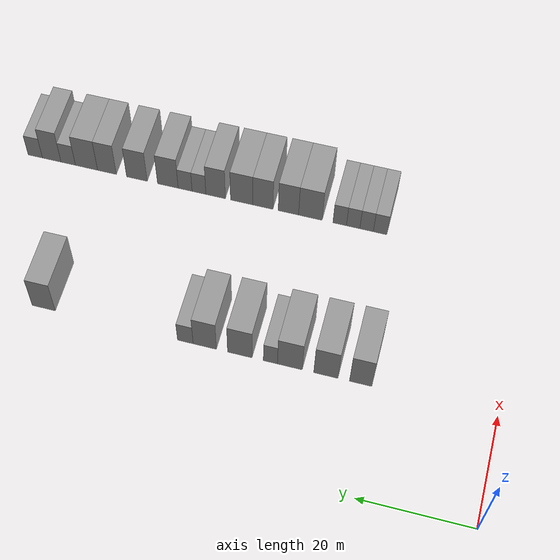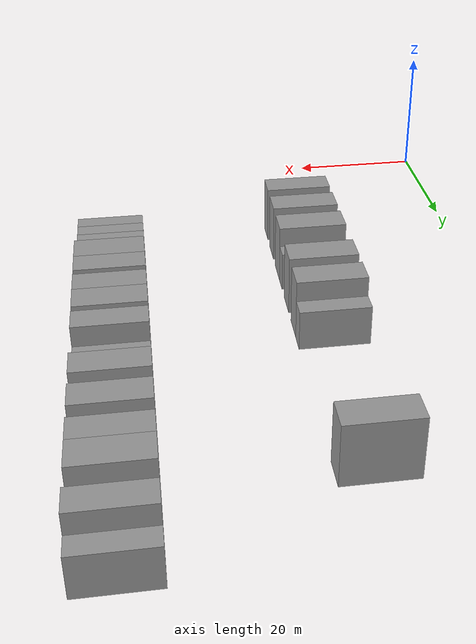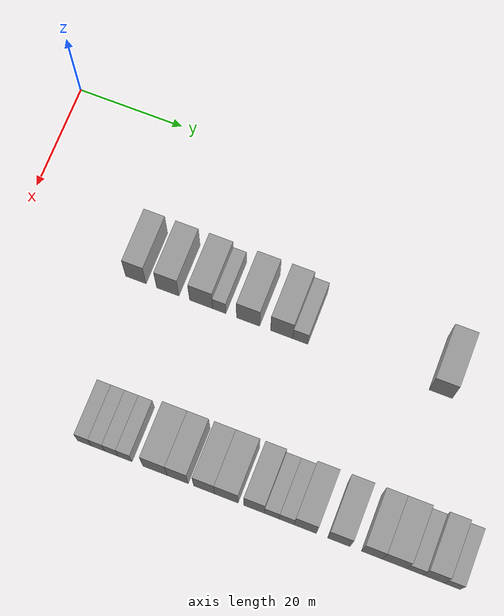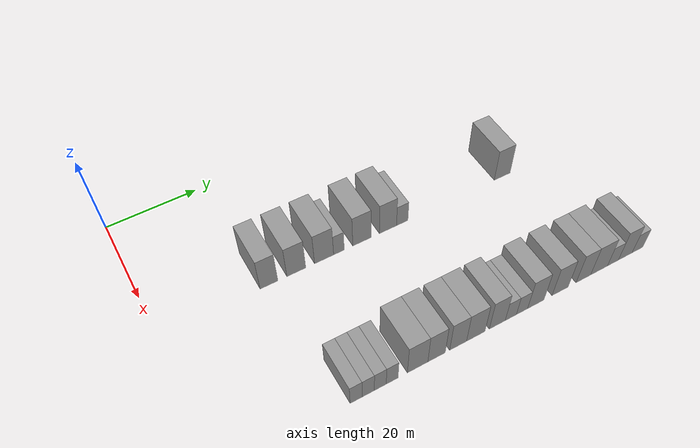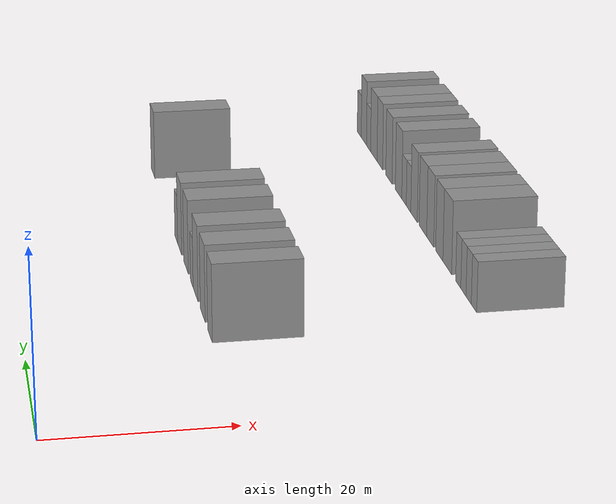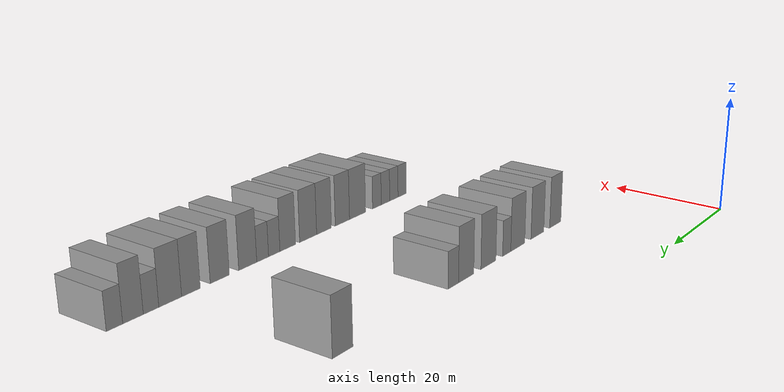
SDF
<sdf version="1.6">
 <world name="default">
  <model name="building_62">
   <static>1</static>
   <pose>25.0000 23.4004 0 0.000000 0.000000 0.000000</pose>
   <link name="link">
    <pose>0 0 4.50 0 0 0</pose>
    <collision name="collision"><geometry><box><size>10.0000 3.8824 9.0000</size></box></geometry></collision>
    <visual name="visual">
     <cast_shadows>0</cast_shadows>
     <geometry><box><size>10.0000 3.8824 9.0000</size></box></geometry>
     <material>
      <script>
       <uri>model://grey_wall/materials/scripts</uri>
       <uri>model://grey_wall/materials/textures</uri>
       <name>vrc/grey_wall</name>
      </script>
     </material>
    </visual>
   </link>
  </model>
  <model name="building_63">
   <static>1</static>
   <pose>25.0000 29.4496 0 0.000000 0.000000 0.000000</pose>
   <link name="link">
    <pose>0 0 4.50 0 0 0</pose>
    <collision name="collision"><geometry><box><size>10.0000 4.2161 9.0000</size></box></geometry></collision>
    <visual name="visual">
     <cast_shadows>0</cast_shadows>
     <geometry><box><size>10.0000 4.2161 9.0000</size></box></geometry>
     <material>
      <script>
       <uri>model://grey_wall/materials/scripts</uri>
       <uri>model://grey_wall/materials/textures</uri>
       <name>vrc/grey_wall</name>
      </script>
     </material>
    </visual>
   </link>
  </model>
  <model name="building_64">
   <static>1</static>
   <pose>25.0000 35.7394 0 0.000000 0.000000 0.000000</pose>
   <link name="link">
    <pose>0 0 4.50 0 0 0</pose>
    <collision name="collision"><geometry><box><size>10.0000 4.3635 9.0000</size></box></geometry></collision>
    <visual name="visual">
     <cast_shadows>0</cast_shadows>
     <geometry><box><size>10.0000 4.3635 9.0000</size></box></geometry>
     <material>
      <script>
       <uri>model://grey_wall/materials/scripts</uri>
       <uri>model://grey_wall/materials/textures</uri>
       <name>vrc/grey_wall</name>
      </script>
     </material>
    </visual>
   </link>
  </model>
  <model name="building_65">
   <static>1</static>
   <pose>25.0000 39.1544 0 0.000000 0.000000 0.000000</pose>
   <link name="link">
    <pose>0 0 3.00 0 0 0</pose>
    <collision name="collision"><geometry><box><size>10.0000 2.4665 6.0000</size></box></geometry></collision>
    <visual name="visual">
     <cast_shadows>0</cast_shadows>
     <geometry><box><size>10.0000 2.4665 6.0000</size></box></geometry>
     <material>
      <script>
       <uri>model://grey_wall/materials/scripts</uri>
       <uri>model://grey_wall/materials/textures</uri>
       <name>vrc/grey_wall</name>
      </script>
     </material>
    </visual>
   </link>
  </model>
  <model name="building_66">
   <static>1</static>
   <pose>25.0000 44.5543 0 0.000000 0.000000 0.000000</pose>
   <link name="link">
    <pose>0 0 4.50 0 0 0</pose>
    <collision name="collision"><geometry><box><size>10.0000 4.3334 9.0000</size></box></geometry></collision>
    <visual name="visual">
     <cast_shadows>0</cast_shadows>
     <geometry><box><size>10.0000 4.3334 9.0000</size></box></geometry>
     <material>
      <script>
       <uri>model://grey_wall/materials/scripts</uri>
       <uri>model://grey_wall/materials/textures</uri>
       <name>vrc/grey_wall</name>
      </script>
     </material>
    </visual>
   </link>
  </model>
  <model name="building_67">
   <static>1</static>
   <pose>25.0000 50.7945 0 0.000000 0.000000 0.000000</pose>
   <link name="link">
    <pose>0 0 4.50 0 0 0</pose>
    <collision name="collision"><geometry><box><size>10.0000 4.1470 9.0000</size></box></geometry></collision>
    <visual name="visual">
     <cast_shadows>0</cast_shadows>
     <geometry><box><size>10.0000 4.1470 9.0000</size></box></geometry>
     <material>
      <script>
       <uri>model://grey_wall/materials/scripts</uri>
       <uri>model://grey_wall/materials/textures</uri>
       <name>vrc/grey_wall</name>
      </script>
     </material>
    </visual>
   </link>
  </model>
  <model name="building_68">
   <static>1</static>
   <pose>25.0000 54.2632 0 0.000000 0.000000 0.000000</pose>
   <link name="link">
    <pose>0 0 3.00 0 0 0</pose>
    <collision name="collision"><geometry><box><size>10.0000 2.7905 6.0000</size></box></geometry></collision>
    <visual name="visual">
     <cast_shadows>0</cast_shadows>
     <geometry><box><size>10.0000 2.7905 6.0000</size></box></geometry>
     <material>
      <script>
       <uri>model://grey_wall/materials/scripts</uri>
       <uri>model://grey_wall/materials/textures</uri>
       <name>vrc/grey_wall</name>
      </script>
     </material>
    </visual>
   </link>
  </model>
  <model name="building_69">
   <static>1</static>
   <pose>25.0000 80.0277 0 0.000000 0.000000 0.000000</pose>
   <link name="link">
    <pose>0 0 4.50 0 0 0</pose>
    <collision name="collision"><geometry><box><size>10.0000 4.2462 9.0000</size></box></geometry></collision>
    <visual name="visual">
     <cast_shadows>0</cast_shadows>
     <geometry><box><size>10.0000 4.2462 9.0000</size></box></geometry>
     <material>
      <script>
       <uri>model://grey_wall/materials/scripts</uri>
       <uri>model://grey_wall/materials/textures</uri>
       <name>vrc/grey_wall</name>
      </script>
     </material>
    </visual>
   </link>
  </model>
  <model name="building_158">
   <static>1</static>
   <pose>55.0000 26.3717 0 0.000000 0.000000 0.000000</pose>
   <link name="link">
    <pose>0 0 3.00 0 0 0</pose>
    <collision name="collision"><geometry><box><size>10.0000 2.5093 6.0000</size></box></geometry></collision>
    <visual name="visual">
     <cast_shadows>0</cast_shadows>
     <geometry><box><size>10.0000 2.5093 6.0000</size></box></geometry>
     <material>
      <script>
       <uri>model://grey_wall/materials/scripts</uri>
       <uri>model://grey_wall/materials/textures</uri>
       <name>vrc/grey_wall</name>
      </script>
     </material>
    </visual>
   </link>
  </model>
  <model name="building_159">
   <static>1</static>
   <pose>55.0000 28.8742 0 0.000000 0.000000 0.000000</pose>
   <link name="link">
    <pose>0 0 3.00 0 0 0</pose>
    <collision name="collision"><geometry><box><size>10.0000 2.4955 6.0000</size></box></geometry></collision>
    <visual name="visual">
     <cast_shadows>0</cast_shadows>
     <geometry><box><size>10.0000 2.4955 6.0000</size></box></geometry>
     <material>
      <script>
       <uri>model://grey_wall/materials/scripts</uri>
       <uri>model://grey_wall/materials/textures</uri>
       <name>vrc/grey_wall</name>
      </script>
     </material>
    </visual>
   </link>
  </model>
  <model name="building_160">
   <static>1</static>
   <pose>55.0000 31.3643 0 0.000000 0.000000 0.000000</pose>
   <link name="link">
    <pose>0 0 3.00 0 0 0</pose>
    <collision name="collision"><geometry><box><size>10.0000 2.4848 6.0000</size></box></geometry></collision>
    <visual name="visual">
     <cast_shadows>0</cast_shadows>
     <geometry><box><size>10.0000 2.4848 6.0000</size></box></geometry>
     <material>
      <script>
       <uri>model://grey_wall/materials/scripts</uri>
       <uri>model://grey_wall/materials/textures</uri>
       <name>vrc/grey_wall</name>
      </script>
     </material>
    </visual>
   </link>
  </model>
  <model name="building_161">
   <static>1</static>
   <pose>55.0000 33.8622 0 0.000000 0.000000 0.000000</pose>
   <link name="link">
    <pose>0 0 3.00 0 0 0</pose>
    <collision name="collision"><geometry><box><size>10.0000 2.5110 6.0000</size></box></geometry></collision>
    <visual name="visual">
     <cast_shadows>0</cast_shadows>
     <geometry><box><size>10.0000 2.5110 6.0000</size></box></geometry>
     <material>
      <script>
       <uri>model://grey_wall/materials/scripts</uri>
       <uri>model://grey_wall/materials/textures</uri>
       <name>vrc/grey_wall</name>
      </script>
     </material>
    </visual>
   </link>
  </model>
  <model name="building_162">
   <static>1</static>
   <pose>55.0000 39.3290 0 0.000000 0.000000 0.000000</pose>
   <link name="link">
    <pose>0 0 4.50 0 0 0</pose>
    <collision name="collision"><geometry><box><size>10.0000 4.4226 9.0000</size></box></geometry></collision>
    <visual name="visual">
     <cast_shadows>0</cast_shadows>
     <geometry><box><size>10.0000 4.4226 9.0000</size></box></geometry>
     <material>
      <script>
       <uri>model://grey_wall/materials/scripts</uri>
       <uri>model://grey_wall/materials/textures</uri>
       <name>vrc/grey_wall</name>
      </script>
     </material>
    </visual>
   </link>
  </model>
  <model name="building_163">
   <static>1</static>
   <pose>55.0000 43.4551 0 0.000000 0.000000 0.000000</pose>
   <link name="link">
    <pose>0 0 4.50 0 0 0</pose>
    <collision name="collision"><geometry><box><size>10.0000 3.8297 9.0000</size></box></geometry></collision>
    <visual name="visual">
     <cast_shadows>0</cast_shadows>
     <geometry><box><size>10.0000 3.8297 9.0000</size></box></geometry>
     <material>
      <script>
       <uri>model://grey_wall/materials/scripts</uri>
       <uri>model://grey_wall/materials/textures</uri>
       <name>vrc/grey_wall</name>
      </script>
     </material>
    </visual>
   </link>
  </model>
  <model name="building_164">
   <static>1</static>
   <pose>55.0000 48.2676 0 0.000000 0.000000 0.000000</pose>
   <link name="link">
    <pose>0 0 4.50 0 0 0</pose>
    <collision name="collision"><geometry><box><size>10.0000 3.7953 9.0000</size></box></geometry></collision>
    <visual name="visual">
     <cast_shadows>0</cast_shadows>
     <geometry><box><size>10.0000 3.7953 9.0000</size></box></geometry>
     <material>
      <script>
       <uri>model://grey_wall/materials/scripts</uri>
       <uri>model://grey_wall/materials/textures</uri>
       <name>vrc/grey_wall</name>
      </script>
     </material>
    </visual>
   </link>
  </model>
  <model name="building_165">
   <static>1</static>
   <pose>55.0000 52.2779 0 0.000000 0.000000 0.000000</pose>
   <link name="link">
    <pose>0 0 4.50 0 0 0</pose>
    <collision name="collision"><geometry><box><size>10.0000 4.2254 9.0000</size></box></geometry></collision>
    <visual name="visual">
     <cast_shadows>0</cast_shadows>
     <geometry><box><size>10.0000 4.2254 9.0000</size></box></geometry>
     <material>
      <script>
       <uri>model://grey_wall/materials/scripts</uri>
       <uri>model://grey_wall/materials/textures</uri>
       <name>vrc/grey_wall</name>
      </script>
     </material>
    </visual>
   </link>
  </model>
  <model name="building_166">
   <static>1</static>
   <pose>55.0000 57.2483 0 0.000000 0.000000 0.000000</pose>
   <link name="link">
    <pose>0 0 4.50 0 0 0</pose>
    <collision name="collision"><geometry><box><size>10.0000 3.7154 9.0000</size></box></geometry></collision>
    <visual name="visual">
     <cast_shadows>0</cast_shadows>
     <geometry><box><size>10.0000 3.7154 9.0000</size></box></geometry>
     <material>
      <script>
       <uri>model://grey_wall/materials/scripts</uri>
       <uri>model://grey_wall/materials/textures</uri>
       <name>vrc/grey_wall</name>
      </script>
     </material>
    </visual>
   </link>
  </model>
  <model name="building_167">
   <static>1</static>
   <pose>55.0000 60.4273 0 0.000000 0.000000 0.000000</pose>
   <link name="link">
    <pose>0 0 3.00 0 0 0</pose>
    <collision name="collision"><geometry><box><size>10.0000 2.6425 6.0000</size></box></geometry></collision>
    <visual name="visual">
     <cast_shadows>0</cast_shadows>
     <geometry><box><size>10.0000 2.6425 6.0000</size></box></geometry>
     <material>
      <script>
       <uri>model://grey_wall/materials/scripts</uri>
       <uri>model://grey_wall/materials/textures</uri>
       <name>vrc/grey_wall</name>
      </script>
     </material>
    </visual>
   </link>
  </model>
  <model name="building_168">
   <static>1</static>
   <pose>55.0000 63.0873 0 0.000000 0.000000 0.000000</pose>
   <link name="link">
    <pose>0 0 3.00 0 0 0</pose>
    <collision name="collision"><geometry><box><size>10.0000 2.6775 6.0000</size></box></geometry></collision>
    <visual name="visual">
     <cast_shadows>0</cast_shadows>
     <geometry><box><size>10.0000 2.6775 6.0000</size></box></geometry>
     <material>
      <script>
       <uri>model://grey_wall/materials/scripts</uri>
       <uri>model://grey_wall/materials/textures</uri>
       <name>vrc/grey_wall</name>
      </script>
     </material>
    </visual>
   </link>
  </model>
  <model name="building_169">
   <static>1</static>
   <pose>55.0000 66.4097 0 0.000000 0.000000 0.000000</pose>
   <link name="link">
    <pose>0 0 4.50 0 0 0</pose>
    <collision name="collision"><geometry><box><size>10.0000 3.9674 9.0000</size></box></geometry></collision>
    <visual name="visual">
     <cast_shadows>0</cast_shadows>
     <geometry><box><size>10.0000 3.9674 9.0000</size></box></geometry>
     <material>
      <script>
       <uri>model://grey_wall/materials/scripts</uri>
       <uri>model://grey_wall/materials/textures</uri>
       <name>vrc/grey_wall</name>
      </script>
     </material>
    </visual>
   </link>
  </model>
  <model name="building_170">
   <static>1</static>
   <pose>55.0000 72.3916 0 0.000000 0.000000 0.000000</pose>
   <link name="link">
    <pose>0 0 4.50 0 0 0</pose>
    <collision name="collision"><geometry><box><size>10.0000 3.9963 9.0000</size></box></geometry></collision>
    <visual name="visual">
     <cast_shadows>0</cast_shadows>
     <geometry><box><size>10.0000 3.9963 9.0000</size></box></geometry>
     <material>
      <script>
       <uri>model://grey_wall/materials/scripts</uri>
       <uri>model://grey_wall/materials/textures</uri>
       <name>vrc/grey_wall</name>
      </script>
     </material>
    </visual>
   </link>
  </model>
  <model name="building_171">
   <static>1</static>
   <pose>55.0000 78.2296 0 0.000000 0.000000 0.000000</pose>
   <link name="link">
    <pose>0 0 4.50 0 0 0</pose>
    <collision name="collision"><geometry><box><size>10.0000 3.6797 9.0000</size></box></geometry></collision>
    <visual name="visual">
     <cast_shadows>0</cast_shadows>
     <geometry><box><size>10.0000 3.6797 9.0000</size></box></geometry>
     <material>
      <script>
       <uri>model://grey_wall/materials/scripts</uri>
       <uri>model://grey_wall/materials/textures</uri>
       <name>vrc/grey_wall</name>
      </script>
     </material>
    </visual>
   </link>
  </model>
  <model name="building_172">
   <static>1</static>
   <pose>55.0000 82.2368 0 0.000000 0.000000 0.000000</pose>
   <link name="link">
    <pose>0 0 4.50 0 0 0</pose>
    <collision name="collision"><geometry><box><size>10.0000 4.3348 9.0000</size></box></geometry></collision>
    <visual name="visual">
     <cast_shadows>0</cast_shadows>
     <geometry><box><size>10.0000 4.3348 9.0000</size></box></geometry>
     <material>
      <script>
       <uri>model://grey_wall/materials/scripts</uri>
       <uri>model://grey_wall/materials/textures</uri>
       <name>vrc/grey_wall</name>
      </script>
     </material>
    </visual>
   </link>
  </model>
  <model name="building_173">
   <static>1</static>
   <pose>55.0000 85.8273 0 0.000000 0.000000 0.000000</pose>
   <link name="link">
    <pose>0 0 3.00 0 0 0</pose>
    <collision name="collision"><geometry><box><size>10.0000 2.8461 6.0000</size></box></geometry></collision>
    <visual name="visual">
     <cast_shadows>0</cast_shadows>
     <geometry><box><size>10.0000 2.8461 6.0000</size></box></geometry>
     <material>
      <script>
       <uri>model://grey_wall/materials/scripts</uri>
       <uri>model://grey_wall/materials/textures</uri>
       <name>vrc/grey_wall</name>
      </script>
     </material>
    </visual>
   </link>
  </model>
  <model name="building_174">
   <static>1</static>
   <pose>55.0000 89.0780 0 0.000000 0.000000 0.000000</pose>
   <link name="link">
    <pose>0 0 4.50 0 0 0</pose>
    <collision name="collision"><geometry><box><size>10.0000 3.6553 9.0000</size></box></geometry></collision>
    <visual name="visual">
     <cast_shadows>0</cast_shadows>
     <geometry><box><size>10.0000 3.6553 9.0000</size></box></geometry>
     <material>
      <script>
       <uri>model://grey_wall/materials/scripts</uri>
       <uri>model://grey_wall/materials/textures</uri>
       <name>vrc/grey_wall</name>
      </script>
     </material>
    </visual>
   </link>
  </model>
  <model name="building_175">
   <static>1</static>
   <pose>55.0000 92.3226 0 0.000000 0.000000 0.000000</pose>
   <link name="link">
    <pose>0 0 3.00 0 0 0</pose>
    <collision name="collision"><geometry><box><size>10.0000 2.8340 6.0000</size></box></geometry></collision>
    <visual name="visual">
     <cast_shadows>0</cast_shadows>
     <geometry><box><size>10.0000 2.8340 6.0000</size></box></geometry>
     <material>
      <script>
       <uri>model://grey_wall/materials/scripts</uri>
       <uri>model://grey_wall/materials/textures</uri>
       <name>vrc/grey_wall</name>
      </script>
     </material>
    </visual>
   </link>
  </model>
 </world>
</sdf>
